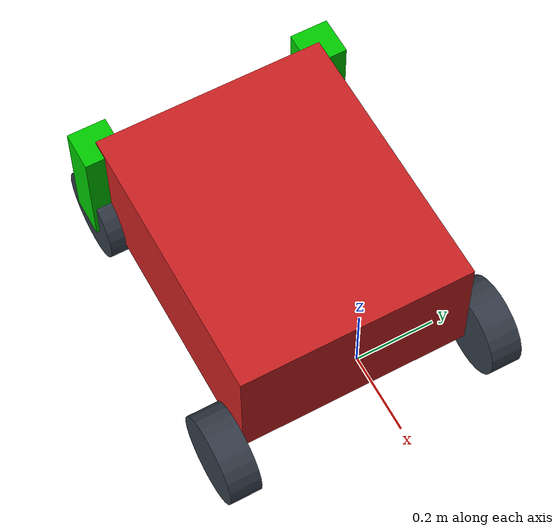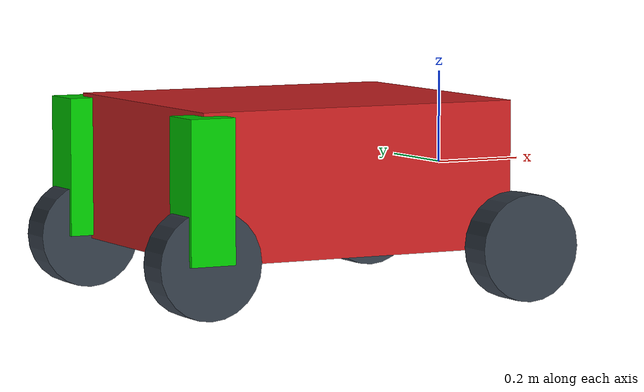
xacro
<?xml version="1.0"?>
<robot name="mpdr" xmlns:xacro="http://www.ros.org/wiki/xacro">

	<!-- CHANGE TO YOUR PACKAGE NAME -->

	<xacro:include filename="$(find mpdr)/urdf/macros.xacro" />

	<xacro:include filename="$(find mpdr)/urdf/materials.xacro" />

	<xacro:include filename="$(find mpdr)/urdf/mpdr.gazebo" />

  <!-- ************ BASE LINK ************ -->

    <link name="base_link">
        <visual>
            <geometry>
                <box size="0.725 0.600 0.315"/>
            </geometry>
            <material name="red"/>
            <origin xyz="-0.36 0 0" rpy="0 0 0"/>
        </visual>

        <collision>
            <geometry>
                <box size="0.725 0.600 0.315"/>
            </geometry>
        </collision>
        <inertial>
            <mass value="48.35"/>
            <inertia ixx="0.5367343572916666" iyy="0.5367343572916666" izz="0.9871458333333333"
                     ixy="0" ixz="0" iyz="0"/>
        </inertial>
    </link>

    <!-- ************ LiDAR Link and Joint ************ -->i
    <!-- ************ Odometry Link and Joint ************ -->
    <!-- ************ Wheels and Caster Wheels ************ -->

    <xacro:caster name="right_caster"/>
    <xacro:caster_joint name="right_caster_joint" parent="base_link" child="right_caster" origin_xyz="-0.725 0.3 0"/>

    <xacro:caster name="left_caster"/>
    <xacro:caster_joint name="left_caster_joint" parent="base_link" child="left_caster" origin_xyz="-0.725 -0.3 0"/>

    <xacro:link_wheel name="back_left_wheel"/>
    <xacro:wheel_joint name="back_left_wheel_joint" parent="left_caster" child="back_left_wheel" origin_xyz="0 0 -0.15"/>

    <xacro:link_wheel name="back_right_wheel"/>
    <xacro:wheel_joint name="back_right_wheel_joint" parent="right_caster" child="back_right_wheel" origin_xyz="0 0 -0.15"/>

    <xacro:link_wheel name="front_left_wheel"/>
    <xacro:wheel_joint name="front_left_wheel_joint" parent="base_link" child="front_left_wheel" origin_xyz="0.0 0.35 -0.15"/>

    <xacro:link_wheel name="front_right_wheel"/>
    <xacro:wheel_joint name="front_right_wheel_joint" parent="base_link" child="front_right_wheel" origin_xyz="0.0 -0.35 -0.15"/>

</robot>

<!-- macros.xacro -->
<robot xmlns:xacro="http://wiki.ros.org/xacro">

	<xacro:macro name="link_wheel" params="name">
	    <link name="${name}">
		<visual>
		    <geometry>
		        <cylinder length="0.08128" radius="0.1143"/>
		    </geometry>
		    <material name="blue"/>
		</visual>
		<collision>
		    <geometry>
		        <cylinder length="0.08128" radius="0.1143"/>
		    </geometry>
		</collision>
		<inertial>
		    <mass value="0.5"/>
		    <inertia ixx="0.0011541666666666666" iyy="0.0011541666666666666" izz="0.0009"
		             ixy="0" ixz="0" iyz="0"/>
		</inertial>
	    </link>
	</xacro:macro>

	<xacro:macro name="caster" params="name">
	    <link name="${name}">
		<visual>
		    <geometry>
		        <box size="0.1 0.1 0.3"/>
		    </geometry>
		    <material name="green"/>
		</visual>
		<collision>
		    <geometry>
		        <box size="0.1 0.1 0.3"/>
		    </geometry>
		</collision>
		<inertial>
		    <mass value="0.1"/>
		    <inertia ixx="0.0008333333333333334" iyy="0.0008333333333333334" izz="0.0001666666666666667"
		             ixy="0" ixz="0" iyz="0"/>
		</inertial>
	    </link>
       </xacro:macro>

       <xacro:macro name="wheel_joint" params="name parent child origin_xyz">
       <joint name="${name}" type="continuous">
		<axis xyz="0 0 1"/>
		<parent link="${parent}"/>
		<child link="${child}"/>
		<origin rpy="-1.5708 0 0" xyz="${origin_xyz}"/>
    	</joint>
       </xacro:macro>

       <xacro:macro name="caster_joint" params="name parent child origin_xyz">
       <joint name="${name}" type="continuous">
	       <axis xyz="0 0 1"/>
	       <parent link="${parent}"/>
	       <child link="${child}"/>
	       <origin rpy="0 0 0" xyz="${origin_xyz}"/>
       </joint>
       </xacro:macro>

       <xacro:macro name="cylinder_inertia" params="mass r l">
             <inertia  ixx="${mass*(3*r*r+l*l)/12}" ixy = "0" ixz = "0"
                       iyy="${mass*(3*r*r+l*l)/12}" iyz = "0"
                       izz="${mass*(r*r)/2}" />
	</xacro:macro>

</robot>

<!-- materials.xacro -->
<robot>
	<material name="black">
		<color rgba="0.0 0.0 0.0 1.0"/>
	</material>

	<material name="blue">
		<color rgba="0.203125 0.23828125 0.28515625 1.0"/>
	</material>

	<material name="green">
		<color rgba="0.0 0.8 0.0 1.0"/>
	</material>

	<material name="grey">
		<color rgba="0.2 0.2 0.2 1.0"/>
	</material>

	<material name="orange">
		<color rgba="1.0 0.423529411765 0.0392156862745 1.0"/>
	</material>

	<material name="brown">
		<color rgba="0.870588235294 0.811764705882 0.764705882353 1.0"/>
	</material>

	<material name="red">
		<color rgba="0.80078125 0.12890625 0.1328125 1.0"/>
	</material>

	<material name="white">
		<color rgba="1.0 1.0 1.0 1.0"/>
	</material>

</robot>
